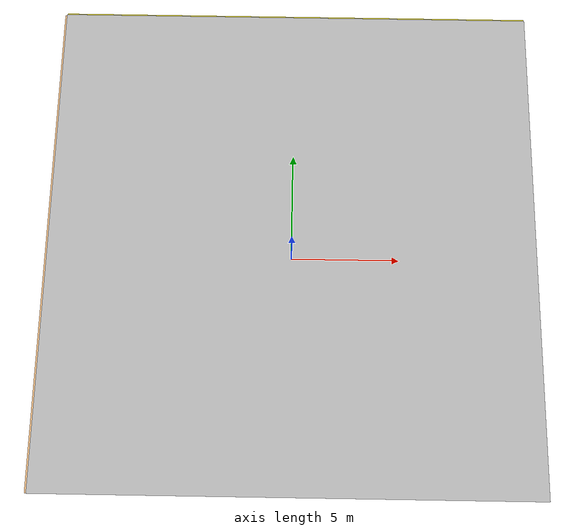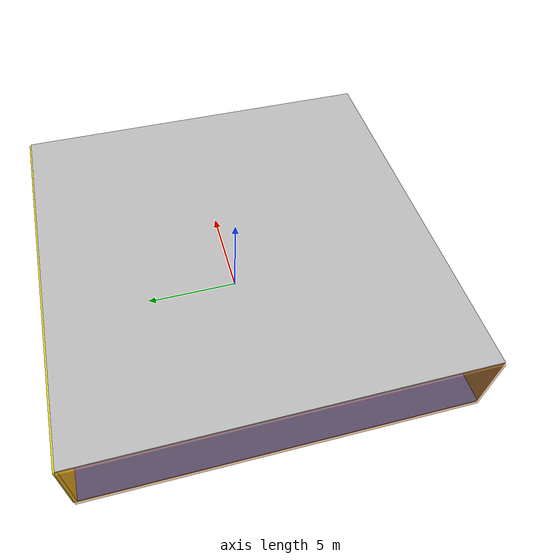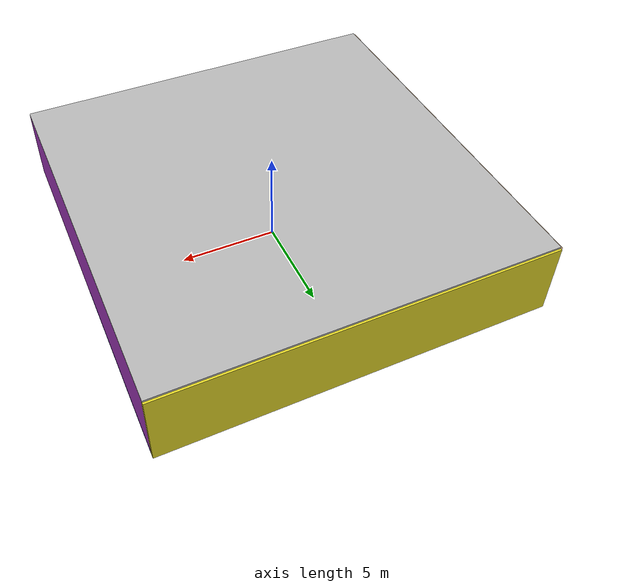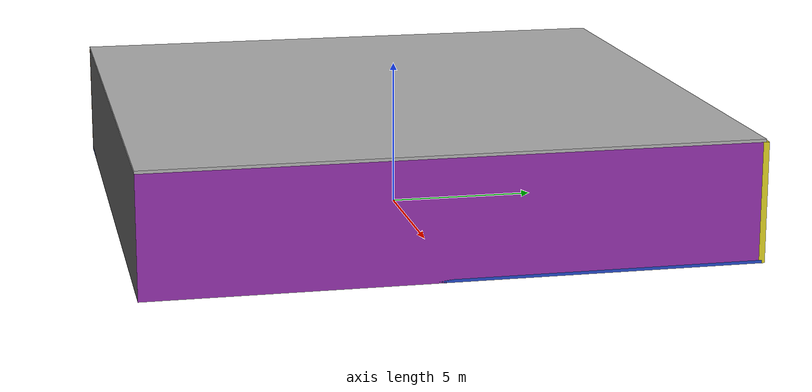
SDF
<sdf version="1.4">
 <world name="default">
  <physics type="ode">
   <max_step_size>0.001</max_step_size>
   <real_time_factor>1</real_time_factor>
   <real_time_update_rate>1000</real_time_update_rate>
   <gravity>0 0 -9.8</gravity>
  </physics>
  <scene><ambient>0.4 0.4 0.4 1</ambient><background>0.7 0.7 0.7 1</background><shadows>1</shadows></scene>
  <model name="Surrounding">
   <static>1</static>
   <link name="Ceiling">
    <collision name="Ceiling_Collision"><geometry><box><size>20 20 0.1</size></box></geometry></collision>
    <visual name="Ceiling_Visual">
     <geometry><box><size>20 20 0.1</size></box></geometry>
     <material>
      <script><uri>file://media/materials/scripts/gazebo.material</uri><name>Gazebo/LightOff</name></script>
     </material>
    </visual>
    <pose>0 0 4.05 0 0 0</pose>
   </link>
   <link name="Wall_South">
    <collision name="Wall_South_Collision">
     <geometry><box><size>20 0 4</size></box></geometry>
     <pose>0 0 2 0 -0 0</pose>
    </collision>
    <visual name="Wall_South_Visual">
     <pose>0 0 2 0 -0 0</pose>
     <geometry><box><size>20 0 4</size></box></geometry>
     <material>
      <script><uri>file://media/materials/scripts/gazebo.material</uri><name>Gazebo/DarkGrey</name></script>
     </material>
    </visual>
    <velocity_decay><linear>0</linear><angular>0</angular></velocity_decay>
    <pose>0 -10 0 0 -0 0</pose>
   </link>
   <link name="Wall_East">
    <collision name="Wall_21_Collision">
     <geometry><box><size>20 0 4</size></box></geometry>
     <pose>0 0 2 0 -0 0</pose>
    </collision>
    <visual name="Wall_21_Visual">
     <pose>0 0 2 0 -0 0</pose>
     <geometry><box><size>20 0 4</size></box></geometry>
     <material>
      <script><uri>file://media/materials/scripts/gazebo.material</uri><name>Gazebo/Purple</name></script>
     </material>
    </visual>
    <velocity_decay><linear>0</linear><angular>0</angular></velocity_decay>
    <pose>10 0 0 0 -0 1.5708</pose>
   </link>
   <link name="Wall_North">
    <collision name="Wall_22_Collision">
     <geometry><box><size>20 0.2 4</size></box></geometry>
     <pose>0 0 2 0 -0 0</pose>
    </collision>
    <visual name="Wall_22_Visual">
     <pose>0 0 2 0 -0 0</pose>
     <geometry><box><size>20 0.2 4</size></box></geometry>
     <material>
      <script><uri>file://media/materials/scripts/gazebo.material</uri><name>Gazebo/Yellow</name></script>
     </material>
    </visual>
    <velocity_decay><linear>0</linear><angular>0</angular></velocity_decay>
    <pose>0 10 0 0 -0 0</pose>
   </link>
   <link name="Wall_West">
    <collision name="Wall_23_Collision">
     <geometry><box><size>20 0.2 4</size></box></geometry>
     <pose>0 0 2 0 -0 0</pose>
    </collision>
    <visual name="Wall_23_Visual">
     <pose>0 0 2 0 -0 0</pose>
     <geometry><box><size>20 0.2 4</size></box></geometry>
     <material>
      <script>
       <uri>file://media/materials/scripts/gazebo.material</uri>
       <name>Gazebo/OrangeTransparent</name>
      </script>
     </material>
    </visual>
    <velocity_decay><linear>0</linear><angular>0</angular></velocity_decay>
    <pose>-10 0 0 0 0 -1.5708</pose>
   </link>
   <link name="Ground_link">
    <collision name="collision">
     <pose>0 0 .05 0 -0 0</pose>
     <geometry><box><size>20 20 0.1</size></box></geometry>
    </collision>
    <visual name="visual">
     <pose>0 0 .05 0 -0 0</pose>
     <geometry><box><size>20 20 0.1</size></box></geometry>
     <material>
      <script><uri>file://media/materials/scripts/gazebo.material</uri><name>Gazebo/Blue</name></script>
     </material>
    </visual>
   </link>
   <static>1</static>
  </model>
  <spherical_coordinates>
   <surface_model>EARTH_WGS84</surface_model>
   <latitude_deg>0</latitude_deg>
   <longitude_deg>0</longitude_deg>
   <elevation>0</elevation>
   <heading_deg>0</heading_deg>
  </spherical_coordinates>
  <light name="lightball_0" type="diffuse">
   <diffuse>0.8 0.8 0.8 1</diffuse>
   <specular>0.2 0.2 0.2 1</specular>
   <attenuation>
    <range>100</range>
    <constant>0.7</constant>
    <linear>0.01</linear>
    <quadratic>0.001</quadratic>
   </attenuation>
   <direction>-0.5 0.1 -0.9</direction>
   <pose>4.50470929881 3.74667818678 3.66594663956 0 0 0</pose>
  </light>
  <light name="lightball_1" type="diffuse">
   <diffuse>0.8 0.8 0.8 1</diffuse>
   <specular>0.2 0.2 0.2 1</specular>
   <attenuation>
    <range>100</range>
    <constant>0.7</constant>
    <linear>0.01</linear>
    <quadratic>0.001</quadratic>
   </attenuation>
   <direction>-0.5 0.1 -0.9</direction>
   <pose>-2.58714037577 4.57534013344 2.23052243301 0 0 0</pose>
  </light>
  <light name="lightball_2" type="diffuse">
   <diffuse>0.8 0.8 0.8 1</diffuse>
   <specular>0.2 0.2 0.2 1</specular>
   <attenuation>
    <range>100</range>
    <constant>0.7</constant>
    <linear>0.01</linear>
    <quadratic>0.001</quadratic>
   </attenuation>
   <direction>-0.5 0.1 -0.9</direction>
   <pose>-0.301639138605 -9.62267340639 0.616628930091 0 0 0</pose>
  </light>
  <light name="lightball_3" type="diffuse">
   <diffuse>0.8 0.8 0.8 1</diffuse>
   <specular>0.2 0.2 0.2 1</specular>
   <attenuation>
    <range>100</range>
    <constant>0.7</constant>
    <linear>0.01</linear>
    <quadratic>0.001</quadratic>
   </attenuation>
   <direction>-0.5 0.1 -0.9</direction>
   <pose>9.93120179532 -8.57230810605 3.02667094186 0 0 0</pose>
  </light>
  <light name="lightball_4" type="diffuse">
   <diffuse>0.8 0.8 0.8 1</diffuse>
   <specular>0.2 0.2 0.2 1</specular>
   <attenuation>
    <range>100</range>
    <constant>0.7</constant>
    <linear>0.01</linear>
    <quadratic>0.001</quadratic>
   </attenuation>
   <direction>-0.5 0.1 -0.9</direction>
   <pose>4.8579135329 -6.96472880307 2.22223452602 0 0 0</pose>
  </light>
  <light name="lightball_5" type="diffuse">
   <diffuse>0.8 0.8 0.8 1</diffuse>
   <specular>0.2 0.2 0.2 1</specular>
   <attenuation>
    <range>100</range>
    <constant>0.7</constant>
    <linear>0.01</linear>
    <quadratic>0.001</quadratic>
   </attenuation>
   <direction>-0.5 0.1 -0.9</direction>
   <pose>0.350077481749 -4.63813634136 3.6803545358 0 0 0</pose>
  </light>
  <light name="lightball_6" type="diffuse">
   <diffuse>0.8 0.8 0.8 1</diffuse>
   <specular>0.2 0.2 0.2 1</specular>
   <attenuation>
    <range>100</range>
    <constant>0.7</constant>
    <linear>0.01</linear>
    <quadratic>0.001</quadratic>
   </attenuation>
   <direction>-0.5 0.1 -0.9</direction>
   <pose>-6.48482098546 3.58591821165 1.25257553004 0 0 0</pose>
  </light>
  <light name="lightball_7" type="diffuse">
   <diffuse>0.8 0.8 0.8 1</diffuse>
   <specular>0.2 0.2 0.2 1</specular>
   <attenuation>
    <range>100</range>
    <constant>0.7</constant>
    <linear>0.01</linear>
    <quadratic>0.001</quadratic>
   </attenuation>
   <direction>-0.5 0.1 -0.9</direction>
   <pose>-7.76123173992 -5.95513032003 3.77090130355 0 0 0</pose>
  </light>
  <light name="lightball_8" type="diffuse">
   <diffuse>0.8 0.8 0.8 1</diffuse>
   <specular>0.2 0.2 0.2 1</specular>
   <attenuation>
    <range>100</range>
    <constant>0.7</constant>
    <linear>0.01</linear>
    <quadratic>0.001</quadratic>
   </attenuation>
   <direction>-0.5 0.1 -0.9</direction>
   <pose>0.704543535167 6.6564991076 2.10984530568 0 0 0</pose>
  </light>
  <light name="lightball_9" type="diffuse">
   <diffuse>0.8 0.8 0.8 1</diffuse>
   <specular>0.2 0.2 0.2 1</specular>
   <attenuation>
    <range>100</range>
    <constant>0.7</constant>
    <linear>0.01</linear>
    <quadratic>0.001</quadratic>
   </attenuation>
   <direction>-0.5 0.1 -0.9</direction>
   <pose>6.4792032599 -0.857383980447 0.569736787456 0 0 0</pose>
  </light>
  <light name="lightball_10" type="diffuse">
   <diffuse>0.8 0.8 0.8 1</diffuse>
   <specular>0.2 0.2 0.2 1</specular>
   <attenuation>
    <range>100</range>
    <constant>0.7</constant>
    <linear>0.01</linear>
    <quadratic>0.001</quadratic>
   </attenuation>
   <direction>-0.5 0.1 -0.9</direction>
   <pose>0.758142370821 4.87834063496 2.35595846237 0 0 0</pose>
  </light>
  <light name="lightball_11" type="diffuse">
   <diffuse>0.8 0.8 0.8 1</diffuse>
   <specular>0.2 0.2 0.2 1</specular>
   <attenuation>
    <range>100</range>
    <constant>0.7</constant>
    <linear>0.01</linear>
    <quadratic>0.001</quadratic>
   </attenuation>
   <direction>-0.5 0.1 -0.9</direction>
   <pose>-8.16939349189 -9.21894356851 3.5429506633 0 0 0</pose>
  </light>
  <light name="lightball_12" type="diffuse">
   <diffuse>0.8 0.8 0.8 1</diffuse>
   <specular>0.2 0.2 0.2 1</specular>
   <attenuation>
    <range>100</range>
    <constant>0.7</constant>
    <linear>0.01</linear>
    <quadratic>0.001</quadratic>
   </attenuation>
   <direction>-0.5 0.1 -0.9</direction>
   <pose>0.183126378719 2.91313999215 3.33361584467 0 0 0</pose>
  </light>
  <light name="lightball_13" type="diffuse">
   <diffuse>0.8 0.8 0.8 1</diffuse>
   <specular>0.2 0.2 0.2 1</specular>
   <attenuation>
    <range>100</range>
    <constant>0.7</constant>
    <linear>0.01</linear>
    <quadratic>0.001</quadratic>
   </attenuation>
   <direction>-0.5 0.1 -0.9</direction>
   <pose>9.18707341006 -3.31554644769 3.30573883775 0 0 0</pose>
  </light>
  <include><uri>model://table</uri><pose>-7.07071640573 -6.44309471201 0 0 0 2.43393466078</pose></include>
  <include><uri>model://table</uri><pose>5.53489119639 -3.70028919336 0 0 0 1.23665832304</pose></include>
 </world>
</sdf>

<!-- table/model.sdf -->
<sdf version="1.5">
  <model name="table">
    <static>true</static>
    <link name="link">
      <collision name="surface">
        <pose>0 0 1.0 0 0 0</pose>
        <geometry>
          <box>
            <size>1.5 0.8 0.03</size>
          </box>
        </geometry>
        <surface>
          <friction>
            <ode>
              <mu>0.6</mu>
              <mu2>0.6</mu2>
            </ode>
          </friction>
        </surface>
      </collision>
      <visual name="visual1">
        <pose>0 0 1.0 0 0 0</pose>
        <geometry>
          <box>
            <size>1.5 0.8 0.03</size>
          </box>
        </geometry>
        <material>
          <script>
            <uri>model://media/materials/scripts/gazebo.material</uri>
            <name>Gazebo/Wood</name>
          </script>
        </material>
      </visual>
      <collision name="front_left_leg">
        <pose>0.68 0.38 0.5 0 0 0</pose>
        <geometry>
          <cylinder>
            <radius>0.02</radius>
            <length>1.0</length>
          </cylinder>
        </geometry>
      </collision>
      <visual name="front_left_leg">
        <pose>0.68 0.38 0.5 0 0 0</pose>
        <geometry>
          <cylinder>
            <radius>0.02</radius>
            <length>1.0</length>
          </cylinder>
        </geometry>
        <material>
          <script>
            <uri>model://media/materials/scripts/gazebo.material</uri>
            <name>Gazebo/Grey</name>
          </script>
        </material>
      </visual>
      <collision name="front_right_leg">
        <pose>0.68 -0.38 0.5 0 0 0</pose>
        <geometry>
          <cylinder>
            <radius>0.02</radius>
            <length>1.0</length>
          </cylinder>
        </geometry>
      </collision>
      <visual name="front_right_leg">
        <pose>0.68 -0.38 0.5 0 0 0</pose>
        <geometry>
          <cylinder>
            <radius>0.02</radius>
            <length>1.0</length>
          </cylinder>
        </geometry>
        <material>
          <script>
            <uri>model://media/materials/scripts/gazebo.material</uri>
            <name>Gazebo/Grey</name>
          </script>
        </material>
      </visual>
      <collision name="back_right_leg">
        <pose>-0.68 -0.38 0.5 0 0 0</pose>
        <geometry>
          <cylinder>
            <radius>0.02</radius>
            <length>1.0</length>
          </cylinder>
        </geometry>
      </collision>
      <visual name="back_right_leg">
        <pose>-0.68 -0.38 0.5 0 0 0</pose>
        <geometry>
          <cylinder>
            <radius>0.02</radius>
            <length>1.0</length>
          </cylinder>
        </geometry>
        <material>
          <script>
            <uri>model://media/materials/scripts/gazebo.material</uri>
            <name>Gazebo/Grey</name>
          </script>
        </material>
      </visual>
      <collision name="back_left_leg">
        <pose>-0.68 0.38 0.5 0 0 0</pose>
        <geometry>
          <cylinder>
            <radius>0.02</radius>
            <length>1.0</length>
          </cylinder>
        </geometry>
      </collision>
      <visual name="back_left_leg">
        <pose>-0.68 0.38 0.5 0 0 0</pose>
        <geometry>
          <cylinder>
            <radius>0.02</radius>
            <length>1.0</length>
          </cylinder>
        </geometry>
        <material>
          <script>
            <uri>model://media/materials/scripts/gazebo.material</uri>
            <name>Gazebo/Grey</name>
          </script>
        </material>
      </visual>
    </link>
  </model>
</sdf>
